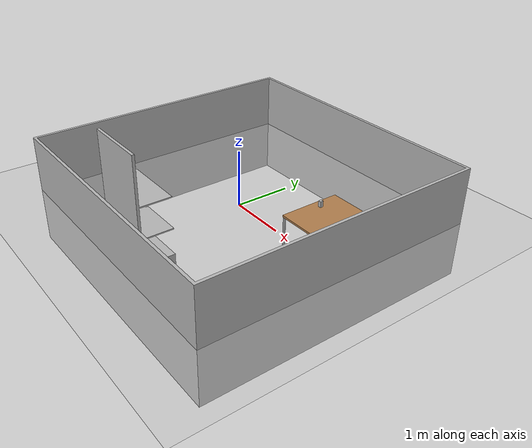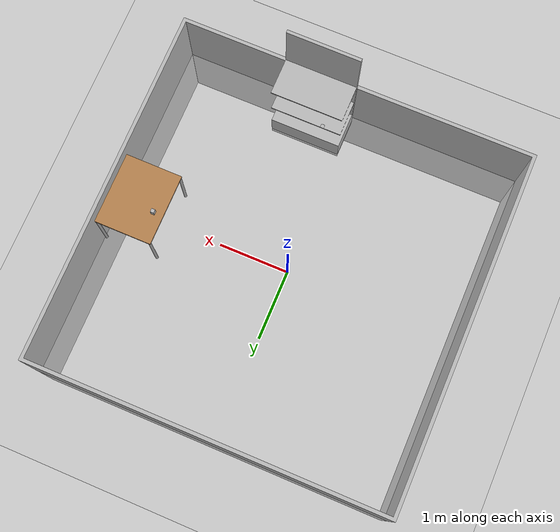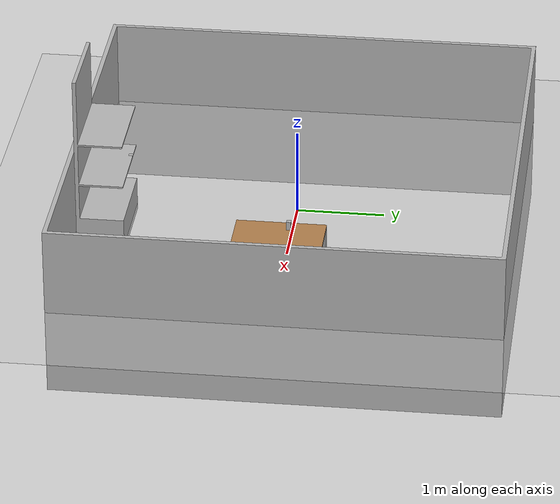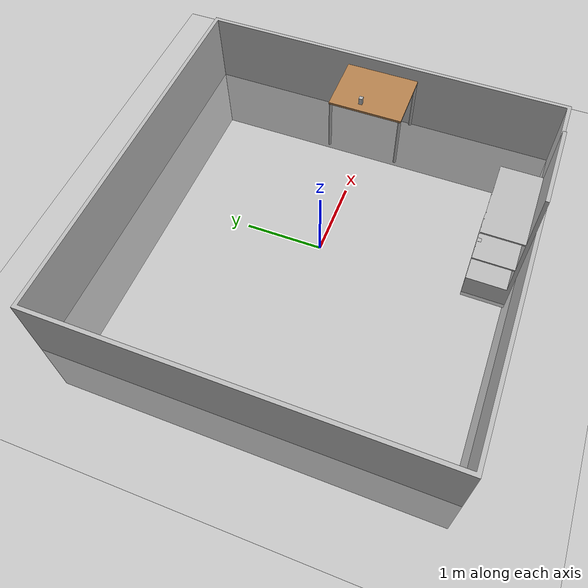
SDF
<sdf version="1.6">
 <world name="default">
  <plugin name="ros_link_attacher_plugin" filename="libgazebo_ros_link_attacher.so"/>
  <light name="sun" type="directional">
   <pose>0 0 10 0 -0 0</pose>
   <diffuse>0.8 0.8 0.8 1</diffuse>
   <specular>0.2 0.2 0.2 1</specular>
   <attenuation>
    <range>1000</range>
    <constant>0.9</constant>
    <linear>0.01</linear>
    <quadratic>0.001</quadratic>
   </attenuation>
   <direction>-0.5 0.1 -0.9</direction>
  </light>
  <model name="ground_plane">
   <static>1</static>
   <link name="link">
    <collision name="collision">
     <geometry><plane><normal>0 0 1</normal><size>100 100</size></plane></geometry>
     <surface>
      <contact><collide_bitmask>65535</collide_bitmask></contact>
      <friction><ode><mu>100</mu><mu2>50</mu2></ode></friction>
     </surface>
    </collision>
    <visual name="visual">
     <cast_shadows>0</cast_shadows>
     <geometry><plane><normal>0 0 1</normal><size>100 100</size></plane></geometry>
     <material>
      <script><uri>file://media/materials/scripts/gazebo.material</uri><name>Gazebo/Grey</name></script>
     </material>
    </visual>
   </link>
  </model>
  <gravity>0 0 -9.8</gravity>
  <magnetic_field>6e-06 2.3e-05 -4.2e-05</magnetic_field>
  <atmosphere type="adiabatic"/>
  <physics name="default_physics" default="0" type="ode">
   <max_step_size>0.001</max_step_size>
   <real_time_factor>1</real_time_factor>
   <real_time_update_rate>1000</real_time_update_rate>
  </physics>
  <scene><ambient>0.4 0.4 0.4 1</ambient><background>0.7 0.7 0.7 1</background><shadows>1</shadows></scene>
  <audio><device>default</device></audio>
  <spherical_coordinates>
   <surface_model>EARTH_WGS84</surface_model>
   <latitude_deg>0</latitude_deg>
   <longitude_deg>0</longitude_deg>
   <elevation>0</elevation>
   <heading_deg>0</heading_deg>
  </spherical_coordinates>
  <model name="table_0">
   <static>1</static>
   <link name="link">
    <collision name="surface">
     <pose>0 0 0.8 0 -0 0</pose>
     <geometry><box><size>1 0.8 0.03</size></box></geometry>
    </collision>
    <visual name="visual1">
     <pose>0 0 0.8 0 -0 0</pose>
     <geometry><box><size>1 0.8 0.03</size></box></geometry>
     <material>
      <script><uri>file://media/materials/scripts/gazebo.material</uri><name>Gazebo/Wood</name></script>
     </material>
    </visual>
    <collision name="front_left_leg">
     <pose>0.48 0.38 0.4 0 -0 0</pose>
     <geometry><cylinder><radius>0.02</radius><length>0.8</length></cylinder></geometry>
    </collision>
    <visual name="front_left_leg">
     <pose>0.48 0.38 0.4 0 -0 0</pose>
     <geometry><cylinder><radius>0.02</radius><length>0.8</length></cylinder></geometry>
     <material>
      <script><uri>file://media/materials/scripts/gazebo.material</uri><name>Gazebo/Grey</name></script>
     </material>
    </visual>
    <collision name="front_right_leg">
     <pose>0.48 -0.38 0.4 0 -0 0</pose>
     <geometry><cylinder><radius>0.02</radius><length>0.8</length></cylinder></geometry>
    </collision>
    <visual name="front_right_leg">
     <pose>0.48 -0.38 0.4 0 -0 0</pose>
     <geometry><cylinder><radius>0.02</radius><length>0.8</length></cylinder></geometry>
     <material>
      <script><uri>file://media/materials/scripts/gazebo.material</uri><name>Gazebo/Grey</name></script>
     </material>
    </visual>
    <collision name="back_right_leg">
     <pose>-0.48 -0.38 0.4 0 -0 0</pose>
     <geometry><cylinder><radius>0.02</radius><length>0.8</length></cylinder></geometry>
    </collision>
    <visual name="back_right_leg">
     <pose>-0.48 -0.38 0.4 0 -0 0</pose>
     <geometry><cylinder><radius>0.02</radius><length>0.8</length></cylinder></geometry>
     <material>
      <script><uri>file://media/materials/scripts/gazebo.material</uri><name>Gazebo/Grey</name></script>
     </material>
    </visual>
    <collision name="back_left_leg">
     <pose>-0.48 0.38 0.4 0 -0 0</pose>
     <geometry><cylinder><radius>0.02</radius><length>0.8</length></cylinder></geometry>
    </collision>
    <visual name="back_left_leg">
     <pose>-0.48 0.38 0.4 0 -0 0</pose>
     <geometry><cylinder><radius>0.02</radius><length>0.8</length></cylinder></geometry>
     <material>
      <script><uri>file://media/materials/scripts/gazebo.material</uri><name>Gazebo/Grey</name></script>
     </material>
    </visual>
    <velocity_decay><linear>0</linear><angular>0</angular></velocity_decay>
   </link>
   <pose>2.11403 0.023827 0 0 -0 1.57</pose>
  </model>
  <model name="aruco_cube_333">
   <static>0</static>
   <link name="link">
    <inertial>
     <mass>0.05</mass>
     <inertia>
      <ixx>5.2083e-05</ixx>
      <ixy>0</ixy>
      <ixz>0</ixz>
      <iyy>5.2083e-05</iyy>
      <iyz>0</iyz>
      <izz>2.0833e-05</izz>
     </inertia>
    </inertial>
    <collision name="colision">
     <geometry><box><size>0.05 0.05 0.1</size></box></geometry>
     <surface>
      <friction><ode><mu>30</mu><mu2>30</mu2><fdir1>0 0 0</fdir1></ode></friction>
      <contact><ode><kp>1e+06</kp><kd>100</kd><min_depth>0.0025</min_depth><max_vel>1</max_vel></ode></contact>
     </surface>
    </collision>
    <visual name="visual1">
     <geometry>
      <mesh><uri>model://aruco_cube_333/meshes/aruco_cube_5cm.dae</uri><scale>1 1 2</scale></mesh>
     </geometry>
    </visual>
    <velocity_decay><linear>0</linear><angular>0</angular></velocity_decay>
   </link>
   <pose>1.85 0.12 0.8625 0 -0 0</pose>
  </model>
  <model name="room_square_5m">
   <link name="link_0">
    <inertial>
     <mass>1</mass>
     <inertia>
      <ixx>0.166667</ixx>
      <ixy>0</ixy>
      <ixz>0</ixz>
      <iyy>0.166667</iyy>
      <iyz>0</iyz>
      <izz>0.166667</izz>
     </inertia>
    </inertial>
    <visual name="visual">
     <geometry><mesh><uri>model://0-blender/room_square_5m.dae</uri><scale>1 1 1</scale></mesh></geometry>
    </visual>
    <collision name="collision">
     <geometry><mesh><uri>model://0-blender/room_square_5m.dae</uri><scale>1 1 1</scale></mesh></geometry>
     <surface>
      <friction>
       <ode><mu>1</mu><mu2>1</mu2><fdir1>0 0 0</fdir1><slip1>0</slip1><slip2>0</slip2></ode>
       <torsional>
        <coefficient>1</coefficient>
        <patch_radius>0</patch_radius>
        <surface_radius>0</surface_radius>
        <use_patch_radius>1</use_patch_radius>
        <ode><slip>0</slip></ode>
       </torsional>
      </friction>
      <bounce><restitution_coefficient>0</restitution_coefficient><threshold>1e+06</threshold></bounce>
      <contact>
       <collide_without_contact>0</collide_without_contact>
       <collide_without_contact_bitmask>1</collide_without_contact_bitmask>
       <collide_bitmask>1</collide_bitmask>
       <ode>
        <soft_cfm>0</soft_cfm>
        <soft_erp>0.2</soft_erp>
        <kp>1e+13</kp>
        <kd>1</kd>
        <max_vel>0.01</max_vel>
        <min_depth>0</min_depth>
       </ode>
       <bullet>
        <split_impulse>1</split_impulse>
        <split_impulse_penetration_threshold>-0.01</split_impulse_penetration_threshold>
        <soft_cfm>0</soft_cfm>
        <soft_erp>0.2</soft_erp>
        <kp>1e+13</kp>
        <kd>1</kd>
       </bullet>
      </contact>
     </surface>
    </collision>
   </link>
   <static>1</static>
   <pose>0.042554 0.028023 0 0 -0 0</pose>
  </model>
  <model name="cab_2_shelves">
   <link name="link_0">
    <inertial>
     <mass>1</mass>
     <inertia>
      <ixx>0.166667</ixx>
      <ixy>0</ixy>
      <ixz>0</ixz>
      <iyy>0.166667</iyy>
      <iyz>0</iyz>
      <izz>0.166667</izz>
     </inertia>
    </inertial>
    <visual name="visual">
     <geometry><mesh><uri>model://0-blender/cab_2_shelves.dae</uri><scale>1 1 1</scale></mesh></geometry>
    </visual>
    <collision name="collision">
     <geometry><mesh><uri>model://0-blender/cab_2_shelves.dae</uri><scale>1 1 1</scale></mesh></geometry>
     <surface>
      <friction>
       <ode><mu>1</mu><mu2>1</mu2><fdir1>0 0 0</fdir1><slip1>0</slip1><slip2>0</slip2></ode>
       <torsional>
        <coefficient>1</coefficient>
        <patch_radius>0</patch_radius>
        <surface_radius>0</surface_radius>
        <use_patch_radius>1</use_patch_radius>
        <ode><slip>0</slip></ode>
       </torsional>
      </friction>
      <bounce><restitution_coefficient>0</restitution_coefficient><threshold>1e+06</threshold></bounce>
      <contact>
       <collide_without_contact>0</collide_without_contact>
       <collide_without_contact_bitmask>1</collide_without_contact_bitmask>
       <collide_bitmask>1</collide_bitmask>
       <ode>
        <soft_cfm>0</soft_cfm>
        <soft_erp>0.2</soft_erp>
        <kp>1e+13</kp>
        <kd>1</kd>
        <max_vel>0.01</max_vel>
        <min_depth>0</min_depth>
       </ode>
       <bullet>
        <split_impulse>1</split_impulse>
        <split_impulse_penetration_threshold>-0.01</split_impulse_penetration_threshold>
        <soft_cfm>0</soft_cfm>
        <soft_erp>0.2</soft_erp>
        <kp>1e+13</kp>
        <kd>1</kd>
       </bullet>
      </contact>
     </surface>
    </collision>
   </link>
   <static>1</static>
   <pose>0.51674 -2.1004 -0.10 0 -0 3.14</pose>
  </model>
  <model name="aruco_marker_original_111">
   <static>1</static>
   <link name="marker">
    <inertial>
     <mass>0.1</mass>
     <inertia><ixx>0</ixx><ixy>0</ixy><ixz>0</ixz><iyy>0</iyy><iyz>0</iyz><izz>0</izz></inertia>
    </inertial>
    <visual name="visual">
     <pose>0 0 0 0 -0 1.57</pose>
     <geometry><box><size>0.05 0.05 0.001</size></box></geometry>
     <material>
      <script>
       <uri>model://aruco_marker_original_111/material/scripts</uri>
       <uri>model://aruco_marker_original_111/material/textures</uri>
       <name>Aruco/aruco_marker_original_111</name>
      </script>
     </material>
    </visual>
    <collision name="collision"><geometry><box><size>0.05 0.05 0.001</size></box></geometry></collision>
    <self_collide>1</self_collide>
   </link>
   <pose>0.28 -1.87 0.765 0 0 3.14</pose>
  </model>
 </world>
</sdf>
